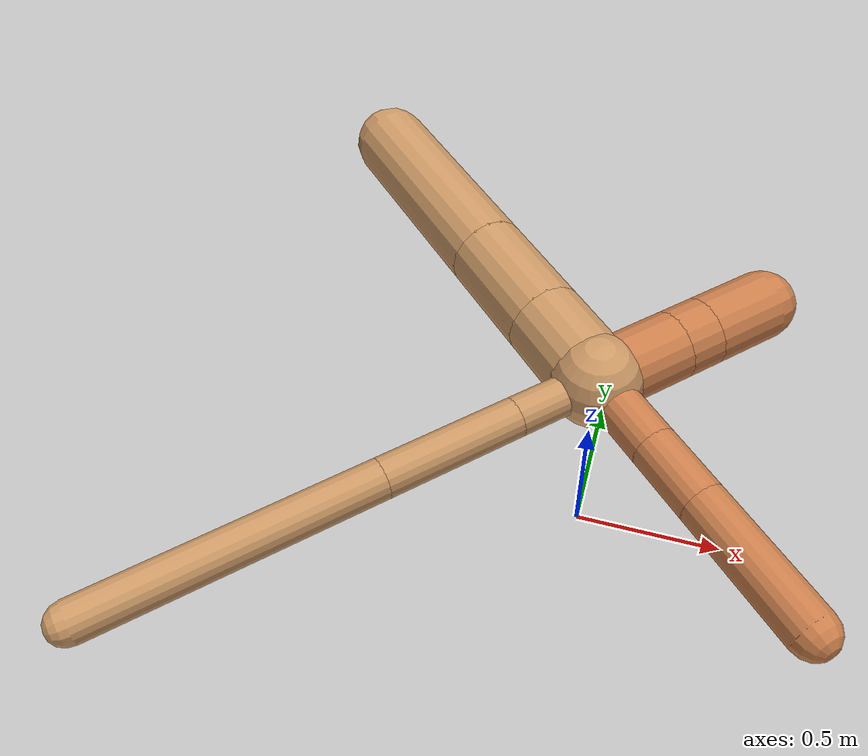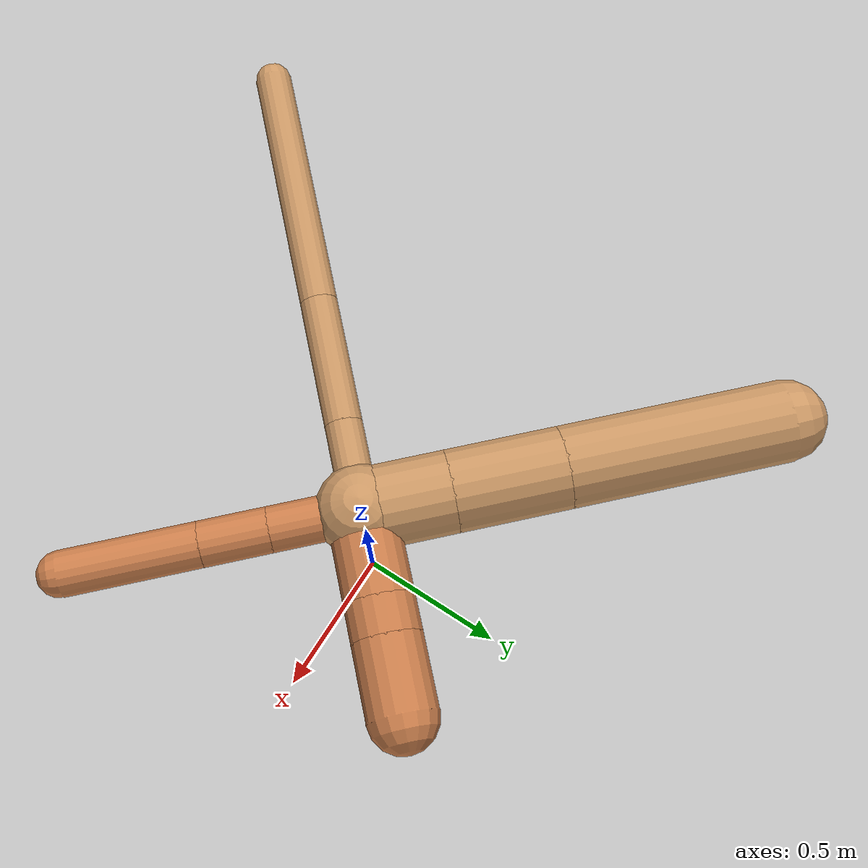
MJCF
<?xml version="1.0" ?>
<mujoco model="ant">

	<compiler angle="degree" coordinate="local" inertiafromgeom="true"/>

	<option integrator="RK4" timestep="0.01"/>

	<custom>

		<numeric data="0.0 0.0 0.55 1.0 0.0 0.0 0.0 0.0 1.0 0.0 -1.0 0.0 -1.0 0.0 1.0" name="init_qpos"/>

	</custom>

	<default>

		<joint armature="1" damping="1" limited="true"/>

		<geom conaffinity="0" condim="3" density="5.0" friction="1.5 0.1 0.1" margin="0.01" rgba="0.8 0.6 0.4 1"/>

	</default>

	<worldbody>

		<body name="torso" pos="0 0 0.75">

			<geom name="torso_geom" pos="0 0 0" size="0.14443526856719308" type="sphere"/>

			<!--joint armature="0" damping="0" limited="false" margin="0.01" name="root" pos="0 0 0" type="free"/-->

			<body name="front_left_leg" pos="0 0 0">

				<geom fromto="0 0 0 0.2 0.2 0" name="aux_1_geom" size="0.11058466974828007" type="capsule" rgba=".8 .5 .3 1"/>

				<body name="aux_1" pos="0.2 0.2 0">

					<joint axis="0 0 1" name="hip_1" pos="0.0 0.0 0.0" range="-40 40" type="hinge"/>

					<geom fromto="0 0 0 0.08286490819385944 0.08286490819385944 0" name="left_leg_geom" size="0.11058466974828007" type="capsule" rgba=".8 .5 .3 1"/>

					<body pos="0.08286490819385944 0.08286490819385944 0" name="front_left_foot">

						<joint axis="-1 1 0" name="ankle_1" pos="0.0 0.0 0.0" range="30 100" type="hinge"/>

						<geom fromto="0 0 0 0.1657298163877189 0.1657298163877189 0" name="left_ankle_geom" size="0.11058466974828007" type="capsule" rgba=".8 .5 .3 1"/>

					</body>

				</body>

			</body>

			<body name="front_right_leg" pos="0 0 0">

				<geom fromto="0 0 0 -0.2 0.2 0" name="aux_2_geom" size="0.1311892562893032" type="capsule"/>

				<body name="aux_2" pos="-0.2 0.2 0">

					<joint axis="0 0 1" name="hip_2" pos="0.0 0.0 0.0" range="-40 40" type="hinge"/>

					<geom fromto="0 0 0 -0.2523460328435586 0.2523460328435586 0" name="right_leg_geom" size="0.1311892562893032" type="capsule"/>

					<body pos="-0.2523460328435586 0.2523460328435586 0" name="front_right_foot">

						<joint axis="1 1 0" name="ankle_2" pos="0.0 0.0 0.0" range="-100 -30" type="hinge"/>

						<geom fromto="0 0 0 -0.5046920656871172 0.5046920656871172 0" name="right_ankle_geom" size="0.1311892562893032" type="capsule"/>

					</body>

				</body>

			</body>

			<body name="left_back_leg" pos="0 0 0">

				<geom fromto="0 0 0 -0.2 -0.2 0" name="aux_3_geom" size="0.06073167203147313" type="capsule"/>

				<body name="aux_3" pos="-0.2 -0.2 0">

					<joint axis="0 0 1" name="hip_3" pos="0.0 0.0 0.0" range="-40 40" type="hinge"/>

					<geom fromto="0 0 0 -0.3018667561948664 -0.3018667561948664 0" name="back_leg_geom" size="0.06073167203147313" type="capsule"/>

					<body pos="-0.3018667561948664 -0.3018667561948664 0" name="left_back_foot">

						<joint axis="-1 1 0" name="ankle_3" pos="0.0 0.0 0.0" range="-100 -30" type="hinge"/>

						<geom fromto="0 0 0 -0.6037335123897328 -0.6037335123897328 0" name="third_ankle_geom" size="0.06073167203147313" type="capsule"/>

					</body>

				</body>

			</body>

			<body name="right_back_leg" pos="0 0 0">

				<geom fromto="0 0 0 0.2 -0.2 0" name="aux_4_geom" size="0.07250743015295061" type="capsule" rgba=".8 .5 .3 1"/>

				<body name="aux_4" pos="0.2 -0.2 0">

					<joint axis="0 0 1" name="hip_4" pos="0.0 0.0 0.0" range="-40 40" type="hinge"/>

					<geom fromto="0 0 0 0.1505351740733994 -0.1505351740733994 0" name="rightback_leg_geom" size="0.07250743015295061" type="capsule" rgba=".8 .5 .3 1"/>

					<body pos="0.1505351740733994 -0.1505351740733994 0" name="right_back_foot">

						<joint axis="1 1 0" name="ankle_4" pos="0.0 0.0 0.0" range="30 100" type="hinge"/>

						<geom fromto="0 0 0 0.3010703481467988 -0.3010703481467988 0" name="fourth_ankle_geom" size="0.07250743015295061" type="capsule" rgba=".8 .5 .3 1"/>

					</body>

				</body>

			</body>

		</body>

	</worldbody>

	<actuator>

		<motor ctrllimited="true" ctrlrange="-1.0 1.0" joint="hip_4" gear="150"/>

		<motor ctrllimited="true" ctrlrange="-1.0 1.0" joint="ankle_4" gear="150"/>

		<motor ctrllimited="true" ctrlrange="-1.0 1.0" joint="hip_1" gear="150"/>

		<motor ctrllimited="true" ctrlrange="-1.0 1.0" joint="ankle_1" gear="150"/>

		<motor ctrllimited="true" ctrlrange="-1.0 1.0" joint="hip_2" gear="150"/>

		<motor ctrllimited="true" ctrlrange="-1.0 1.0" joint="ankle_2" gear="150"/>

		<motor ctrllimited="true" ctrlrange="-1.0 1.0" joint="hip_3" gear="150"/>

		<motor ctrllimited="true" ctrlrange="-1.0 1.0" joint="ankle_3" gear="150"/>

	</actuator>

</mujoco>
